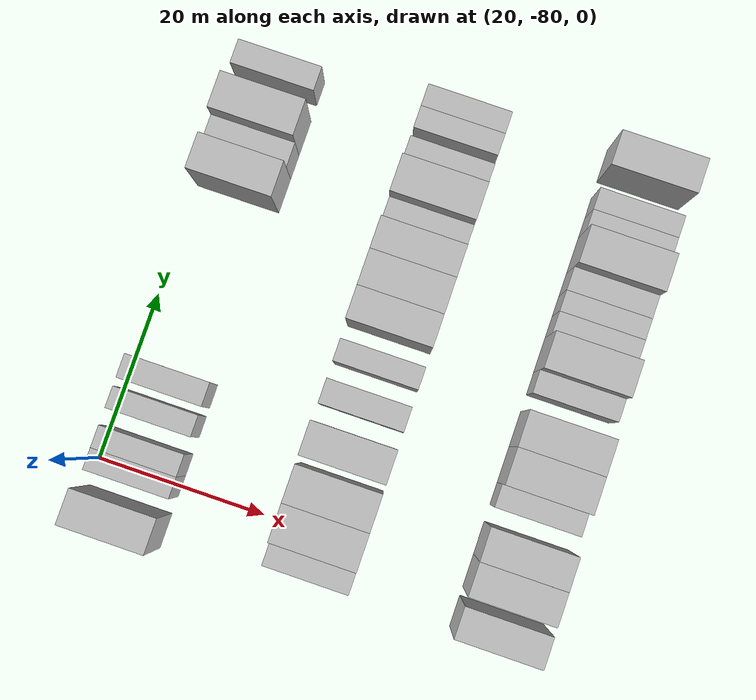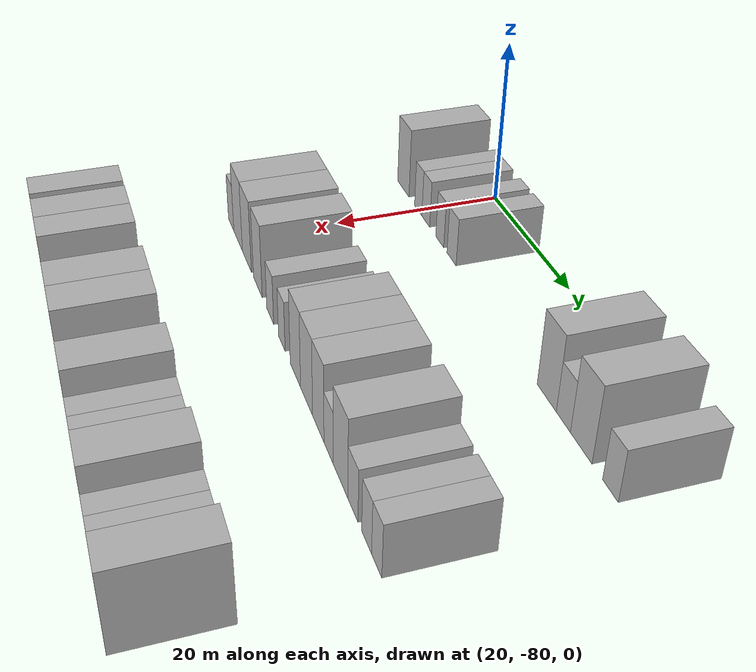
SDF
<sdf version="1.6">
 <world name="default">
  <model name="building_78">
   <static>1</static>
   <pose>25.0000 -85.3054 0 0.000000 0.000000 0.000000</pose>
   <link name="link">
    <pose>0 0 4.50 0 0 0</pose>
    <collision name="collision"><geometry><box><size>10.0000 4.1364 9.0000</size></box></geometry></collision>
    <visual name="visual">
     <cast_shadows>0</cast_shadows>
     <geometry><box><size>10.0000 4.1364 9.0000</size></box></geometry>
     <material>
      <script>
       <uri>model://HANNAS_wall/materials/scripts</uri>
       <uri>model://HANNAS_wall/materials/textures</uri>
       <name>vrc/HANNAS_wall</name>
      </script>
     </material>
    </visual>
   </link>
  </model>
  <model name="building_79">
   <static>1</static>
   <pose>25.0000 -79.9799 0 0.000000 0.000000 0.000000</pose>
   <link name="link">
    <pose>0 0 3.00 0 0 0</pose>
    <collision name="collision"><geometry><box><size>10.0000 2.5144 6.0000</size></box></geometry></collision>
    <visual name="visual">
     <cast_shadows>0</cast_shadows>
     <geometry><box><size>10.0000 2.5144 6.0000</size></box></geometry>
     <material>
      <script>
       <uri>model://HANNAS_wall/materials/scripts</uri>
       <uri>model://HANNAS_wall/materials/textures</uri>
       <name>vrc/HANNAS_wall</name>
      </script>
     </material>
    </visual>
   </link>
  </model>
  <model name="building_80">
   <static>1</static>
   <pose>25.0000 -77.4095 0 0.000000 0.000000 0.000000</pose>
   <link name="link">
    <pose>0 0 3.00 0 0 0</pose>
    <collision name="collision"><geometry><box><size>10.0000 2.6263 6.0000</size></box></geometry></collision>
    <visual name="visual">
     <cast_shadows>0</cast_shadows>
     <geometry><box><size>10.0000 2.6263 6.0000</size></box></geometry>
     <material>
      <script>
       <uri>model://HANNAS_wall/materials/scripts</uri>
       <uri>model://HANNAS_wall/materials/textures</uri>
       <name>vrc/HANNAS_wall</name>
      </script>
     </material>
    </visual>
   </link>
  </model>
  <model name="building_81">
   <static>1</static>
   <pose>25.0000 -72.8299 0 0.000000 0.000000 0.000000</pose>
   <link name="link">
    <pose>0 0 3.00 0 0 0</pose>
    <collision name="collision"><geometry><box><size>10.0000 2.5330 6.0000</size></box></geometry></collision>
    <visual name="visual">
     <cast_shadows>0</cast_shadows>
     <geometry><box><size>10.0000 2.5330 6.0000</size></box></geometry>
     <material>
      <script>
       <uri>model://HANNAS_wall/materials/scripts</uri>
       <uri>model://HANNAS_wall/materials/textures</uri>
       <name>vrc/HANNAS_wall</name>
      </script>
     </material>
    </visual>
   </link>
  </model>
  <model name="building_82">
   <static>1</static>
   <pose>25.0000 -69.1555 0 0.000000 0.000000 0.000000</pose>
   <link name="link">
    <pose>0 0 3.00 0 0 0</pose>
    <collision name="collision"><geometry><box><size>10.0000 2.8157 6.0000</size></box></geometry></collision>
    <visual name="visual">
     <cast_shadows>0</cast_shadows>
     <geometry><box><size>10.0000 2.8157 6.0000</size></box></geometry>
     <material>
      <script>
       <uri>model://HANNAS_wall/materials/scripts</uri>
       <uri>model://HANNAS_wall/materials/textures</uri>
       <name>vrc/HANNAS_wall</name>
      </script>
     </material>
    </visual>
   </link>
  </model>
  <model name="building_83">
   <static>1</static>
   <pose>25.0000 -44.4096 0 0.000000 0.000000 0.000000</pose>
   <link name="link">
    <pose>0 0 4.50 0 0 0</pose>
    <collision name="collision"><geometry><box><size>10.0000 4.2254 9.0000</size></box></geometry></collision>
    <visual name="visual">
     <cast_shadows>0</cast_shadows>
     <geometry><box><size>10.0000 4.2254 9.0000</size></box></geometry>
     <material>
      <script>
       <uri>model://HANNAS_wall/materials/scripts</uri>
       <uri>model://HANNAS_wall/materials/textures</uri>
       <name>vrc/HANNAS_wall</name>
      </script>
     </material>
    </visual>
   </link>
  </model>
  <model name="building_84">
   <static>1</static>
   <pose>25.0000 -40.8135 0 0.000000 0.000000 0.000000</pose>
   <link name="link">
    <pose>0 0 3.00 0 0 0</pose>
    <collision name="collision"><geometry><box><size>10.0000 2.9668 6.0000</size></box></geometry></collision>
    <visual name="visual">
     <cast_shadows>0</cast_shadows>
     <geometry><box><size>10.0000 2.9668 6.0000</size></box></geometry>
     <material>
      <script>
       <uri>model://HANNAS_wall/materials/scripts</uri>
       <uri>model://HANNAS_wall/materials/textures</uri>
       <name>vrc/HANNAS_wall</name>
      </script>
     </material>
    </visual>
   </link>
  </model>
  <model name="building_85">
   <static>1</static>
   <pose>25.0000 -37.1729 0 0.000000 0.000000 0.000000</pose>
   <link name="link">
    <pose>0 0 4.50 0 0 0</pose>
    <collision name="collision"><geometry><box><size>10.0000 4.3143 9.0000</size></box></geometry></collision>
    <visual name="visual">
     <cast_shadows>0</cast_shadows>
     <geometry><box><size>10.0000 4.3143 9.0000</size></box></geometry>
     <material>
      <script>
       <uri>model://HANNAS_wall/materials/scripts</uri>
       <uri>model://HANNAS_wall/materials/textures</uri>
       <name>vrc/HANNAS_wall</name>
      </script>
     </material>
    </visual>
   </link>
  </model>
  <model name="building_86">
   <static>1</static>
   <pose>25.0000 -31.5708 0 0.000000 0.000000 0.000000</pose>
   <link name="link">
    <pose>0 0 3.00 0 0 0</pose>
    <collision name="collision"><geometry><box><size>10.0000 2.8900 6.0000</size></box></geometry></collision>
    <visual name="visual">
     <cast_shadows>0</cast_shadows>
     <geometry><box><size>10.0000 2.8900 6.0000</size></box></geometry>
     <material>
      <script>
       <uri>model://HANNAS_wall/materials/scripts</uri>
       <uri>model://HANNAS_wall/materials/textures</uri>
       <name>vrc/HANNAS_wall</name>
      </script>
     </material>
    </visual>
   </link>
  </model>
  <model name="building_246">
   <static>1</static>
   <pose>47.0000 -83.2494 0 0.000000 0.000000 0.000000</pose>
   <link name="link">
    <pose>0 0 3.00 0 0 0</pose>
    <collision name="collision"><geometry><box><size>10.0000 2.8693 6.0000</size></box></geometry></collision>
    <visual name="visual">
     <cast_shadows>0</cast_shadows>
     <geometry><box><size>10.0000 2.8693 6.0000</size></box></geometry>
     <material>
      <script>
       <uri>model://HANNAS_wall/materials/scripts</uri>
       <uri>model://HANNAS_wall/materials/textures</uri>
       <name>vrc/HANNAS_wall</name>
      </script>
     </material>
    </visual>
   </link>
  </model>
  <model name="building_247">
   <static>1</static>
   <pose>47.0000 -79.6062 0 0.000000 0.000000 0.000000</pose>
   <link name="link">
    <pose>0 0 4.50 0 0 0</pose>
    <collision name="collision"><geometry><box><size>10.0000 4.4171 9.0000</size></box></geometry></collision>
    <visual name="visual">
     <cast_shadows>0</cast_shadows>
     <geometry><box><size>10.0000 4.4171 9.0000</size></box></geometry>
     <material>
      <script>
       <uri>model://HANNAS_wall/materials/scripts</uri>
       <uri>model://HANNAS_wall/materials/textures</uri>
       <name>vrc/HANNAS_wall</name>
      </script>
     </material>
    </visual>
   </link>
  </model>
  <model name="building_248">
   <static>1</static>
   <pose>47.0000 -75.2029 0 0.000000 0.000000 0.000000</pose>
   <link name="link">
    <pose>0 0 4.50 0 0 0</pose>
    <collision name="collision"><geometry><box><size>10.0000 4.3895 9.0000</size></box></geometry></collision>
    <visual name="visual">
     <cast_shadows>0</cast_shadows>
     <geometry><box><size>10.0000 4.3895 9.0000</size></box></geometry>
     <material>
      <script>
       <uri>model://HANNAS_wall/materials/scripts</uri>
       <uri>model://HANNAS_wall/materials/textures</uri>
       <name>vrc/HANNAS_wall</name>
      </script>
     </material>
    </visual>
   </link>
  </model>
  <model name="building_249">
   <static>1</static>
   <pose>47.0000 -70.0247 0 0.000000 0.000000 0.000000</pose>
   <link name="link">
    <pose>0 0 4.50 0 0 0</pose>
    <collision name="collision"><geometry><box><size>10.0000 3.9669 9.0000</size></box></geometry></collision>
    <visual name="visual">
     <cast_shadows>0</cast_shadows>
     <geometry><box><size>10.0000 3.9669 9.0000</size></box></geometry>
     <material>
      <script>
       <uri>model://HANNAS_wall/materials/scripts</uri>
       <uri>model://HANNAS_wall/materials/textures</uri>
       <name>vrc/HANNAS_wall</name>
      </script>
     </material>
    </visual>
   </link>
  </model>
  <model name="building_250">
   <static>1</static>
   <pose>47.0000 -64.5692 0 0.000000 0.000000 0.000000</pose>
   <link name="link">
    <pose>0 0 3.00 0 0 0</pose>
    <collision name="collision"><geometry><box><size>10.0000 2.9443 6.0000</size></box></geometry></collision>
    <visual name="visual">
     <cast_shadows>0</cast_shadows>
     <geometry><box><size>10.0000 2.9443 6.0000</size></box></geometry>
     <material>
      <script>
       <uri>model://HANNAS_wall/materials/scripts</uri>
       <uri>model://HANNAS_wall/materials/textures</uri>
       <name>vrc/HANNAS_wall</name>
      </script>
     </material>
    </visual>
   </link>
  </model>
  <model name="building_251">
   <static>1</static>
   <pose>47.0000 -59.7716 0 0.000000 0.000000 0.000000</pose>
   <link name="link">
    <pose>0 0 3.00 0 0 0</pose>
    <collision name="collision"><geometry><box><size>10.0000 2.6509 6.0000</size></box></geometry></collision>
    <visual name="visual">
     <cast_shadows>0</cast_shadows>
     <geometry><box><size>10.0000 2.6509 6.0000</size></box></geometry>
     <material>
      <script>
       <uri>model://HANNAS_wall/materials/scripts</uri>
       <uri>model://HANNAS_wall/materials/textures</uri>
       <name>vrc/HANNAS_wall</name>
      </script>
     </material>
    </visual>
   </link>
  </model>
  <model name="building_252">
   <static>1</static>
   <pose>47.0000 -54.5122 0 0.000000 0.000000 0.000000</pose>
   <link name="link">
    <pose>0 0 4.50 0 0 0</pose>
    <collision name="collision"><geometry><box><size>10.0000 3.8678 9.0000</size></box></geometry></collision>
    <visual name="visual">
     <cast_shadows>0</cast_shadows>
     <geometry><box><size>10.0000 3.8678 9.0000</size></box></geometry>
     <material>
      <script>
       <uri>model://HANNAS_wall/materials/scripts</uri>
       <uri>model://HANNAS_wall/materials/textures</uri>
       <name>vrc/HANNAS_wall</name>
      </script>
     </material>
    </visual>
   </link>
  </model>
  <model name="building_253">
   <static>1</static>
   <pose>47.0000 -50.4630 0 0.000000 0.000000 0.000000</pose>
   <link name="link">
    <pose>0 0 4.50 0 0 0</pose>
    <collision name="collision"><geometry><box><size>10.0000 4.2305 9.0000</size></box></geometry></collision>
    <visual name="visual">
     <cast_shadows>0</cast_shadows>
     <geometry><box><size>10.0000 4.2305 9.0000</size></box></geometry>
     <material>
      <script>
       <uri>model://HANNAS_wall/materials/scripts</uri>
       <uri>model://HANNAS_wall/materials/textures</uri>
       <name>vrc/HANNAS_wall</name>
      </script>
     </material>
    </visual>
   </link>
  </model>
  <model name="building_254">
   <static>1</static>
   <pose>47.0000 -46.4441 0 0.000000 0.000000 0.000000</pose>
   <link name="link">
    <pose>0 0 4.50 0 0 0</pose>
    <collision name="collision"><geometry><box><size>10.0000 3.8074 9.0000</size></box></geometry></collision>
    <visual name="visual">
     <cast_shadows>0</cast_shadows>
     <geometry><box><size>10.0000 3.8074 9.0000</size></box></geometry>
     <material>
      <script>
       <uri>model://HANNAS_wall/materials/scripts</uri>
       <uri>model://HANNAS_wall/materials/textures</uri>
       <name>vrc/HANNAS_wall</name>
      </script>
     </material>
    </visual>
   </link>
  </model>
  <model name="building_255">
   <static>1</static>
   <pose>47.0000 -43.1055 0 0.000000 0.000000 0.000000</pose>
   <link name="link">
    <pose>0 0 3.00 0 0 0</pose>
    <collision name="collision"><geometry><box><size>10.0000 2.8697 6.0000</size></box></geometry></collision>
    <visual name="visual">
     <cast_shadows>0</cast_shadows>
     <geometry><box><size>10.0000 2.8697 6.0000</size></box></geometry>
     <material>
      <script>
       <uri>model://HANNAS_wall/materials/scripts</uri>
       <uri>model://HANNAS_wall/materials/textures</uri>
       <name>vrc/HANNAS_wall</name>
      </script>
     </material>
    </visual>
   </link>
  </model>
  <model name="building_256">
   <static>1</static>
   <pose>47.0000 -39.4622 0 0.000000 0.000000 0.000000</pose>
   <link name="link">
    <pose>0 0 4.50 0 0 0</pose>
    <collision name="collision"><geometry><box><size>10.0000 4.4170 9.0000</size></box></geometry></collision>
    <visual name="visual">
     <cast_shadows>0</cast_shadows>
     <geometry><box><size>10.0000 4.4170 9.0000</size></box></geometry>
     <material>
      <script>
       <uri>model://HANNAS_wall/materials/scripts</uri>
       <uri>model://HANNAS_wall/materials/textures</uri>
       <name>vrc/HANNAS_wall</name>
      </script>
     </material>
    </visual>
   </link>
  </model>
  <model name="building_257">
   <static>1</static>
   <pose>47.0000 -35.7966 0 0.000000 0.000000 0.000000</pose>
   <link name="link">
    <pose>0 0 3.00 0 0 0</pose>
    <collision name="collision"><geometry><box><size>10.0000 2.9141 6.0000</size></box></geometry></collision>
    <visual name="visual">
     <cast_shadows>0</cast_shadows>
     <geometry><box><size>10.0000 2.9141 6.0000</size></box></geometry>
     <material>
      <script>
       <uri>model://HANNAS_wall/materials/scripts</uri>
       <uri>model://HANNAS_wall/materials/textures</uri>
       <name>vrc/HANNAS_wall</name>
      </script>
     </material>
    </visual>
   </link>
  </model>
  <model name="building_258">
   <static>1</static>
   <pose>47.0000 -32.0243 0 0.000000 0.000000 0.000000</pose>
   <link name="link">
    <pose>0 0 3.00 0 0 0</pose>
    <collision name="collision"><geometry><box><size>10.0000 2.6305 6.0000</size></box></geometry></collision>
    <visual name="visual">
     <cast_shadows>0</cast_shadows>
     <geometry><box><size>10.0000 2.6305 6.0000</size></box></geometry>
     <material>
      <script>
       <uri>model://HANNAS_wall/materials/scripts</uri>
       <uri>model://HANNAS_wall/materials/textures</uri>
       <name>vrc/HANNAS_wall</name>
      </script>
     </material>
    </visual>
   </link>
  </model>
  <model name="building_259">
   <static>1</static>
   <pose>47.0000 -29.3949 0 0.000000 0.000000 0.000000</pose>
   <link name="link">
    <pose>0 0 3.00 0 0 0</pose>
    <collision name="collision"><geometry><box><size>10.0000 2.6283 6.0000</size></box></geometry></collision>
    <visual name="visual">
     <cast_shadows>0</cast_shadows>
     <geometry><box><size>10.0000 2.6283 6.0000</size></box></geometry>
     <material>
      <script>
       <uri>model://HANNAS_wall/materials/scripts</uri>
       <uri>model://HANNAS_wall/materials/textures</uri>
       <name>vrc/HANNAS_wall</name>
      </script>
     </material>
    </visual>
   </link>
  </model>
  <model name="building_438">
   <static>1</static>
   <pose>69.0000 -83.1420 0 0.000000 0.000000 0.000000</pose>
   <link name="link">
    <pose>0 0 4.50 0 0 0</pose>
    <collision name="collision"><geometry><box><size>10.0000 3.6538 9.0000</size></box></geometry></collision>
    <visual name="visual">
     <cast_shadows>0</cast_shadows>
     <geometry><box><size>10.0000 3.6538 9.0000</size></box></geometry>
     <material>
      <script>
       <uri>model://HANNAS_wall/materials/scripts</uri>
       <uri>model://HANNAS_wall/materials/textures</uri>
       <name>vrc/HANNAS_wall</name>
      </script>
     </material>
    </visual>
   </link>
  </model>
  <model name="building_439">
   <static>1</static>
   <pose>69.0000 -78.3642 0 0.000000 0.000000 0.000000</pose>
   <link name="link">
    <pose>0 0 4.50 0 0 0</pose>
    <collision name="collision"><geometry><box><size>10.0000 3.9019 9.0000</size></box></geometry></collision>
    <visual name="visual">
     <cast_shadows>0</cast_shadows>
     <geometry><box><size>10.0000 3.9019 9.0000</size></box></geometry>
     <material>
      <script>
       <uri>model://HANNAS_wall/materials/scripts</uri>
       <uri>model://HANNAS_wall/materials/textures</uri>
       <name>vrc/HANNAS_wall</name>
      </script>
     </material>
    </visual>
   </link>
  </model>
  <model name="building_440">
   <static>1</static>
   <pose>69.0000 -74.4642 0 0.000000 0.000000 0.000000</pose>
   <link name="link">
    <pose>0 0 4.50 0 0 0</pose>
    <collision name="collision"><geometry><box><size>10.0000 3.8980 9.0000</size></box></geometry></collision>
    <visual name="visual">
     <cast_shadows>0</cast_shadows>
     <geometry><box><size>10.0000 3.8980 9.0000</size></box></geometry>
     <material>
      <script>
       <uri>model://HANNAS_wall/materials/scripts</uri>
       <uri>model://HANNAS_wall/materials/textures</uri>
       <name>vrc/HANNAS_wall</name>
      </script>
     </material>
    </visual>
   </link>
  </model>
  <model name="building_441">
   <static>1</static>
   <pose>69.0000 -69.1876 0 0.000000 0.000000 0.000000</pose>
   <link name="link">
    <pose>0 0 3.00 0 0 0</pose>
    <collision name="collision"><geometry><box><size>10.0000 2.6553 6.0000</size></box></geometry></collision>
    <visual name="visual">
     <cast_shadows>0</cast_shadows>
     <geometry><box><size>10.0000 2.6553 6.0000</size></box></geometry>
     <material>
      <script>
       <uri>model://HANNAS_wall/materials/scripts</uri>
       <uri>model://HANNAS_wall/materials/textures</uri>
       <name>vrc/HANNAS_wall</name>
      </script>
     </material>
    </visual>
   </link>
  </model>
  <model name="building_442">
   <static>1</static>
   <pose>69.0000 -65.7091 0 0.000000 0.000000 0.000000</pose>
   <link name="link">
    <pose>0 0 4.50 0 0 0</pose>
    <collision name="collision"><geometry><box><size>10.0000 4.3017 9.0000</size></box></geometry></collision>
    <visual name="visual">
     <cast_shadows>0</cast_shadows>
     <geometry><box><size>10.0000 4.3017 9.0000</size></box></geometry>
     <material>
      <script>
       <uri>model://HANNAS_wall/materials/scripts</uri>
       <uri>model://HANNAS_wall/materials/textures</uri>
       <name>vrc/HANNAS_wall</name>
      </script>
     </material>
    </visual>
   </link>
  </model>
  <model name="building_443">
   <static>1</static>
   <pose>69.0000 -61.4460 0 0.000000 0.000000 0.000000</pose>
   <link name="link">
    <pose>0 0 4.50 0 0 0</pose>
    <collision name="collision"><geometry><box><size>10.0000 4.2245 9.0000</size></box></geometry></collision>
    <visual name="visual">
     <cast_shadows>0</cast_shadows>
     <geometry><box><size>10.0000 4.2245 9.0000</size></box></geometry>
     <material>
      <script>
       <uri>model://HANNAS_wall/materials/scripts</uri>
       <uri>model://HANNAS_wall/materials/textures</uri>
       <name>vrc/HANNAS_wall</name>
      </script>
     </material>
    </visual>
   </link>
  </model>
  <model name="building_444">
   <static>1</static>
   <pose>69.0000 -55.9717 0 0.000000 0.000000 0.000000</pose>
   <link name="link">
    <pose>0 0 3.00 0 0 0</pose>
    <collision name="collision"><geometry><box><size>10.0000 2.7242 6.0000</size></box></geometry></collision>
    <visual name="visual">
     <cast_shadows>0</cast_shadows>
     <geometry><box><size>10.0000 2.7242 6.0000</size></box></geometry>
     <material>
      <script>
       <uri>model://HANNAS_wall/materials/scripts</uri>
       <uri>model://HANNAS_wall/materials/textures</uri>
       <name>vrc/HANNAS_wall</name>
      </script>
     </material>
    </visual>
   </link>
  </model>
  <model name="building_445">
   <static>1</static>
   <pose>69.0000 -52.4782 0 0.000000 0.000000 0.000000</pose>
   <link name="link">
    <pose>0 0 4.50 0 0 0</pose>
    <collision name="collision"><geometry><box><size>10.0000 4.2627 9.0000</size></box></geometry></collision>
    <visual name="visual">
     <cast_shadows>0</cast_shadows>
     <geometry><box><size>10.0000 4.2627 9.0000</size></box></geometry>
     <material>
      <script>
       <uri>model://HANNAS_wall/materials/scripts</uri>
       <uri>model://HANNAS_wall/materials/textures</uri>
       <name>vrc/HANNAS_wall</name>
      </script>
     </material>
    </visual>
   </link>
  </model>
  <model name="building_446">
   <static>1</static>
   <pose>69.0000 -49.0444 0 0.000000 0.000000 0.000000</pose>
   <link name="link">
    <pose>0 0 3.00 0 0 0</pose>
    <collision name="collision"><geometry><box><size>10.0000 2.6051 6.0000</size></box></geometry></collision>
    <visual name="visual">
     <cast_shadows>0</cast_shadows>
     <geometry><box><size>10.0000 2.6051 6.0000</size></box></geometry>
     <material>
      <script>
       <uri>model://HANNAS_wall/materials/scripts</uri>
       <uri>model://HANNAS_wall/materials/textures</uri>
       <name>vrc/HANNAS_wall</name>
      </script>
     </material>
    </visual>
   </link>
  </model>
  <model name="building_447">
   <static>1</static>
   <pose>69.0000 -46.4954 0 0.000000 0.000000 0.000000</pose>
   <link name="link">
    <pose>0 0 3.00 0 0 0</pose>
    <collision name="collision"><geometry><box><size>10.0000 2.4930 6.0000</size></box></geometry></collision>
    <visual name="visual">
     <cast_shadows>0</cast_shadows>
     <geometry><box><size>10.0000 2.4930 6.0000</size></box></geometry>
     <material>
      <script>
       <uri>model://HANNAS_wall/materials/scripts</uri>
       <uri>model://HANNAS_wall/materials/textures</uri>
       <name>vrc/HANNAS_wall</name>
      </script>
     </material>
    </visual>
   </link>
  </model>
  <model name="building_448">
   <static>1</static>
   <pose>69.0000 -43.8693 0 0.000000 0.000000 0.000000</pose>
   <link name="link">
    <pose>0 0 3.00 0 0 0</pose>
    <collision name="collision"><geometry><box><size>10.0000 2.7591 6.0000</size></box></geometry></collision>
    <visual name="visual">
     <cast_shadows>0</cast_shadows>
     <geometry><box><size>10.0000 2.7591 6.0000</size></box></geometry>
     <material>
      <script>
       <uri>model://HANNAS_wall/materials/scripts</uri>
       <uri>model://HANNAS_wall/materials/textures</uri>
       <name>vrc/HANNAS_wall</name>
      </script>
     </material>
    </visual>
   </link>
  </model>
  <model name="building_449">
   <static>1</static>
   <pose>69.0000 -40.2845 0 0.000000 0.000000 0.000000</pose>
   <link name="link">
    <pose>0 0 4.50 0 0 0</pose>
    <collision name="collision"><geometry><box><size>10.0000 4.4106 9.0000</size></box></geometry></collision>
    <visual name="visual">
     <cast_shadows>0</cast_shadows>
     <geometry><box><size>10.0000 4.4106 9.0000</size></box></geometry>
     <material>
      <script>
       <uri>model://HANNAS_wall/materials/scripts</uri>
       <uri>model://HANNAS_wall/materials/textures</uri>
       <name>vrc/HANNAS_wall</name>
      </script>
     </material>
    </visual>
   </link>
  </model>
  <model name="building_450">
   <static>1</static>
   <pose>69.0000 -36.8667 0 0.000000 0.000000 0.000000</pose>
   <link name="link">
    <pose>0 0 3.00 0 0 0</pose>
    <collision name="collision"><geometry><box><size>10.0000 2.4252 6.0000</size></box></geometry></collision>
    <visual name="visual">
     <cast_shadows>0</cast_shadows>
     <geometry><box><size>10.0000 2.4252 6.0000</size></box></geometry>
     <material>
      <script>
       <uri>model://HANNAS_wall/materials/scripts</uri>
       <uri>model://HANNAS_wall/materials/textures</uri>
       <name>vrc/HANNAS_wall</name>
      </script>
     </material>
    </visual>
   </link>
  </model>
  <model name="building_451">
   <static>1</static>
   <pose>69.0000 -34.3549 0 0.000000 0.000000 0.000000</pose>
   <link name="link">
    <pose>0 0 3.00 0 0 0</pose>
    <collision name="collision"><geometry><box><size>10.0000 2.5984 6.0000</size></box></geometry></collision>
    <visual name="visual">
     <cast_shadows>0</cast_shadows>
     <geometry><box><size>10.0000 2.5984 6.0000</size></box></geometry>
     <material>
      <script>
       <uri>model://HANNAS_wall/materials/scripts</uri>
       <uri>model://HANNAS_wall/materials/textures</uri>
       <name>vrc/HANNAS_wall</name>
      </script>
     </material>
    </visual>
   </link>
  </model>
  <model name="building_452">
   <static>1</static>
   <pose>69.0000 -29.0168 0 0.000000 0.000000 0.000000</pose>
   <link name="link">
    <pose>0 0 4.50 0 0 0</pose>
    <collision name="collision"><geometry><box><size>10.0000 4.0779 9.0000</size></box></geometry></collision>
    <visual name="visual">
     <cast_shadows>0</cast_shadows>
     <geometry><box><size>10.0000 4.0779 9.0000</size></box></geometry>
     <material>
      <script>
       <uri>model://HANNAS_wall/materials/scripts</uri>
       <uri>model://HANNAS_wall/materials/textures</uri>
       <name>vrc/HANNAS_wall</name>
      </script>
     </material>
    </visual>
   </link>
  </model>
 </world>
</sdf>
